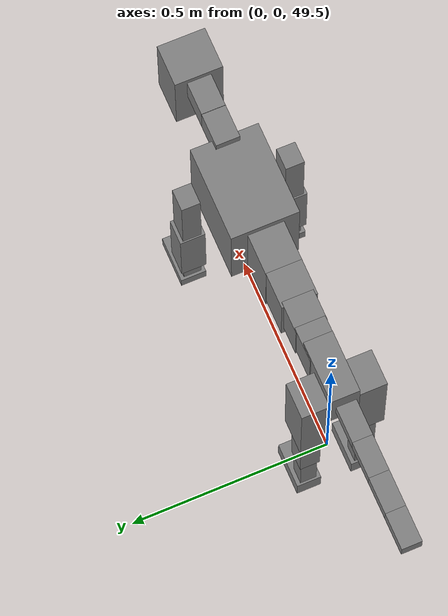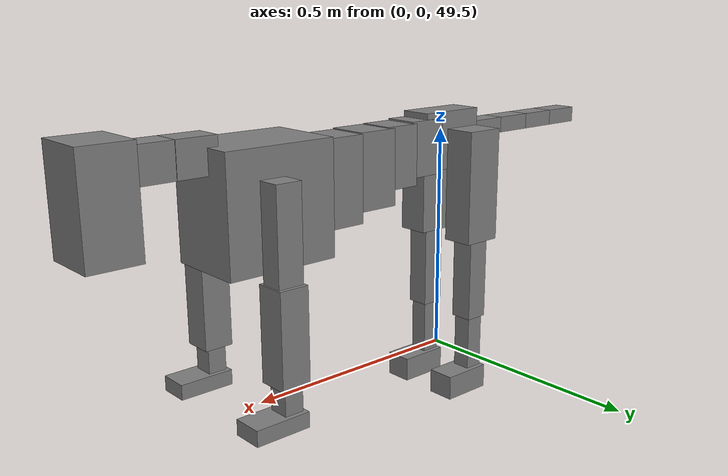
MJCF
<mujoco model="dog">

    <default>
        <joint armature="0.02" stiffness="1" damping="0.2" limited="true"/>
        <geom condim="3" friction="1 0.05 0.05" margin="0.01"/>
        <motor ctrllimited="true" ctrlrange="-1.0 1.0" forcelimited="true" gear="50"/>
    </default>

    <compiler inertiafromgeom="true" angle="radian"/>

    <option timestep="0.016" iterations="50" tolerance="1e-10" solver="Newton" jacobian="dense" cone="pyramidal"/>

    <size nconmax="20000" njmax="60000" nstack="5000000"/>
    <visual>
        <map force="0.1" zfar="30"/>
        <rgba haze="0.15 0.25 0.35 1"/>
        <quality shadowsize="2048"/>
        <global offwidth="800" offheight="800"/>
    </visual>

    <asset>
        <texture type="skybox" builtin="gradient" rgb1="0.3 0.5 0.7" rgb2="0 0 0" width="512" height="512"/>
        <texture name="texplane" type="2d" builtin="checker" rgb1=".2 .3 .4" rgb2=".1 0.15 0.2" width="512" height="512"
                 mark="cross" markrgb=".8 .8 .8"/>
        <texture name="texgeom" type="cube" builtin="flat" mark="cross" width="127" height="1278" rgb1="0.8 0.6 0.4"
                 rgb2="0.8 0.6 0.4" markrgb="1 1 1" random="0.01"/>

        <material name="matplane" reflectance="0.3" texture="texplane" texrepeat="1 1" texuniform="true"/>
        <material name="matgeom" texture="texgeom" texuniform="true" rgba="0.8 0.6 .4 1"/>
    </asset>

    <worldbody>
        <geom name="floor" pos="0 0 0" size="0 0 .25" type="plane" material="matplane" condim="3"/>

        <light directional="false" diffuse=".2 .2 .2" specular="0 0 0" pos="0 0 5" dir="0 0 -1" castshadow="false"/>
        <light mode="targetbodycom" target="torso" directional="false" diffuse=".8 .8 .8" specular="0.3 0.3 0.3"
               pos="0 0 4.0" dir="0 0 -1"/>

        <body name="root" pos="0 0 50">
            <freejoint name="root_1"/>
            <geom type="box" pos="0 0 -0.02" size="0.0774  0.0358  0.063" density="2030"/>

            <body name="spine1" pos="0.054 0 0">
                <joint name="spine1_y" axis="0 1 0" range="0 0.7" limited="true"/>
                <geom type="box" pos="0.02375 0 -0.03" size="0.04375  0.0375  0.05985" density="2030"/>

                <body name="spine2" pos="0.0612 0 0">
                    <joint name="spine2_y" axis="0 1 0" range="-0.15 0.15" limited="true"/>
                    <geom type="box" pos="0.03555  0  -0.04" size="0.04055  0.039  0.06615" density="2030"/>

                    <body name="spine3" pos="0.0730 0 0">
                        <joint name="spine3_y" axis="0 1 0" range="-0.15 0.15" limited="true"/>
                        <geom type="box" pos="0.03555  0  -0.057" size="0.04555  0.0445  0.081" density="2030"/>

                        <body name="spine4" pos="0.0780 0 0">
                            <joint name="spine4_y" axis="0 1 0" range="-0.15 0.15" limited="true"/>
                            <geom type="box" pos="0.05265  0  -0.07" size="0.05265  0.045  0.09135" density="2030"/>

                            <body name="torso" pos="0.1082 0 0">
                                <joint name="torso_y" axis="0 1 0" range="-0.15 0.15" limited="true"/>
                                <geom type="box" pos="0.11925  0  -0.085" size="0.11925  0.085  0.11745"
                                      density="2030"/>

                                <body name="neck1" pos="0.2160  0   0.0180">
                                    <joint name="neck1_y" axis="0 1 0" range="-1.2  -1" limited="true"/>
                                    <geom type="box" pos="0.0423  0  0" size="0.0423  0.03  0.036" density="2325"/>

                                    <body name="neck2" pos="0.0853  0  0">
                                        <joint name="neck2_y" axis="0 1 0" range="0.1  0" limited="true"/>
                                        <geom type="box" pos="0.0423  0  0" size="0.0423  0.03  0.036" density="2325"/>

                                        <body name="head" pos="0.0853  0  0">
                                            <joint name="head_y" axis="0 1 0" range="-0.3  -0.2" limited="true"/>
                                            <geom type="box" pos="0.0531  0  -0.055" size="0.0531  0.06  0.1044"
                                                  density="4030"/>

                                        </body>
                                    </body>
                                </body>

                                <body name="front_shoulder" pos="0.156  0   -0.0480">
                                    <joint name="front_shoulder_y" axis="0 1 0" range="-1 1.5" limited="true"/>
                                    <geom type="box" pos="0 0.13 -0.0818" size="0.0274  0.0234  0.1085" density="1158"/>
                                    <geom type="box" pos="0 -0.13 -0.0818" size="0.0274  0.0234  0.1085"
                                          density="1158"/>

                                    <body name="front_elbow" pos="0  0  -0.1636">
                                        <joint name="front_elbow_y" axis="0 1 0" range="-2 0" limited="true"/>
                                        <geom type="box" pos="0 0.13 -0.0960" size="0.0310  0.0317  0.0960"
                                              density="1081"/>
                                        <geom type="box" pos="0 -0.13 -0.0960" size="0.0310  0.0317  0.0960"
                                              density="1081"/>

                                        <body name="front_wrist" pos="0  0  -0.1920">
                                            <joint name="front_wrist_y" axis="0 1 0" range="-0.2 0" limited="true"/>
                                            <geom type="box" pos="0 0.13 -0.0349" size="0.0201  0.0223  0.0481"
                                                  density="1664"/>
                                            <geom type="box" pos="0 -0.13 -0.0349" size="0.0201  0.0223  0.0481"
                                                  density="1664"/>

                                            <body name="front_finger_end" pos="0  0  -0.0699">
                                                <joint name="front_finger_y" axis="0 1 0" range="-0.4 1"
                                                       limited="true"/>
                                                <geom type="box" pos="0.0322  0.13  -0.0011"
                                                      size="0.0590  0.0322  0.0161" density="1515"/>
                                                <geom type="box" pos="0.0322  -0.13  -0.0011"
                                                      size="0.0590  0.0322  0.0161" density="1515"/>

                                            </body>

                                        </body>
                                    </body>
                                </body>

                            </body>
                        </body>
                    </body>
                </body>
            </body>

            <body name="back_hip" pos="-0.03 0 -0.018">
                <joint name="back_hip_y" axis="0 1 0" range="-1.5 0.3" limited="true"/>
                <geom type="box" pos="0 0.07 -0.1010" size="0.0444  0.0348  0.1238" density="1154"/>
                <geom type="box" pos="0 -0.07 -0.1010" size="0.0444  0.0348  0.1238" density="1154"/>

                <body name="back_knee" pos="0  0  -0.2020">
                    <joint name="back_knee_y" axis="0 1 0" range="0 2.8" limited="true"/>
                    <geom type="box" pos="0 0.07 -0.0942" size="0.0254  0.0250  0.1097" density="1227"/>
                    <geom type="box" pos="0 -0.07 -0.0942" size="0.0254  0.0250  0.1097" density="1227"/>

                    <body name="back_ankle" pos="0  0  -0.1883">
                        <joint name="back_ankle_y" axis="0 1 0" range="-2.2 0" limited="true"/>
                        <geom type="box" pos="0 0.07 -0.0756" size="0.0204  0.0204  0.0869" density="1284"/>
                        <geom type="box" pos="0 -0.07 -0.0756" size="0.0204  0.0204  0.0869" density="1284"/>

                        <body name="back_toe_end" pos="0  0  -0.1512">
                            <joint name="back_toe_y" axis="0 1 0" range="-0.4 1" limited="true"/>
                            <geom type="box" pos="0.0307  0.07  -0.0117" size="0.0563  0.0307  0.0267" density="1515"/>
                            <geom type="box" pos="0.0307  -0.07  -0.0117" size="0.0563  0.0307  0.0267" density="1515"/>

                        </body>
                    </body>
                </body>
            </body>

            <body name="tail1" pos="-0.074 0 -0.006">
                <joint name="tail1_y" axis="0 1 0" range="-0.2 0.2" limited="true"/>
                <geom type="box" pos="-0.0536  0  0" size="0.045  0.025  0.0175" density="1587"/>

                <body name="tail2" pos="-0.09 0 0">
                    <joint name="tail2_y" axis="0 1 0" range="-0.2 0.2" limited="true"/>
                    <geom type="box" pos="-0.0536  0  0" size="0.045  0.025  0.0175" density="1587"/>

                    <body name="tail3" pos="-0.09 0 0">
                        <joint name="tail3_y" axis="0 1 0" range="-0.2 0.2" limited="true"/>
                        <geom type="box" pos="-0.0536  0  0" size="0.045  0.025  0.0175" density="1587"/>

                        <body name="tail4" pos="-0.09 0 0">
                            <joint name="tail4_y" axis="0 1 0" range="-0.2 0.2" limited="true"/>
                            <geom type="box" pos="-0.0536  0  0" size="0.045  0.025  0.0175" density="1587"/>

                        </body>
                    </body>
                </body>
            </body>
        </body>
    </worldbody>

    <actuator>
        <motor joint="spine1_y" forcerange="-150 150     "/>
        <motor joint="spine2_y" forcerange="-150 150     "/>
        <motor joint="spine3_y" forcerange="-150 150     "/>
        <motor joint="spine4_y" forcerange="-150 150     "/>
        <motor joint="torso_y" forcerange="-150 150     "/>
        <motor joint="neck1_y" forcerange="-100 100       "/>
        <motor joint="neck2_y" forcerange="-100 100       "/>
        <motor joint="head_y" forcerange="-150 150       "/>
        <motor joint="front_shoulder_y" forcerange="-148.27 107.95"/>
        <motor joint="front_elbow_y" forcerange="-158.79 171.53"/>
        <motor joint="front_wrist_y" forcerange="-122.63 55.98"/>
        <motor joint="front_finger_y" forcerange="-79.67 51.85"/>
        <motor joint="back_hip_y" forcerange="-311.28 352.52"/>
        <motor joint="back_knee_y" forcerange="-315.98 247.46"/>
        <motor joint="back_angle_y" forcerange="-105.12 120.70"/>
        <motor joint="back_toe_y" forcerange="-105.65 60.03"/>
        <motor joint="tail1_y" forcerange="-50 50     "/>
        <motor joint="tail2_y" forcerange="-50 50     "/>
        <motor joint="tail3_y" forcerange="-50 50     "/>
        <motor joint="tail4_y" forcerange="-50 50     "/>
    </actuator>
</mujoco>
